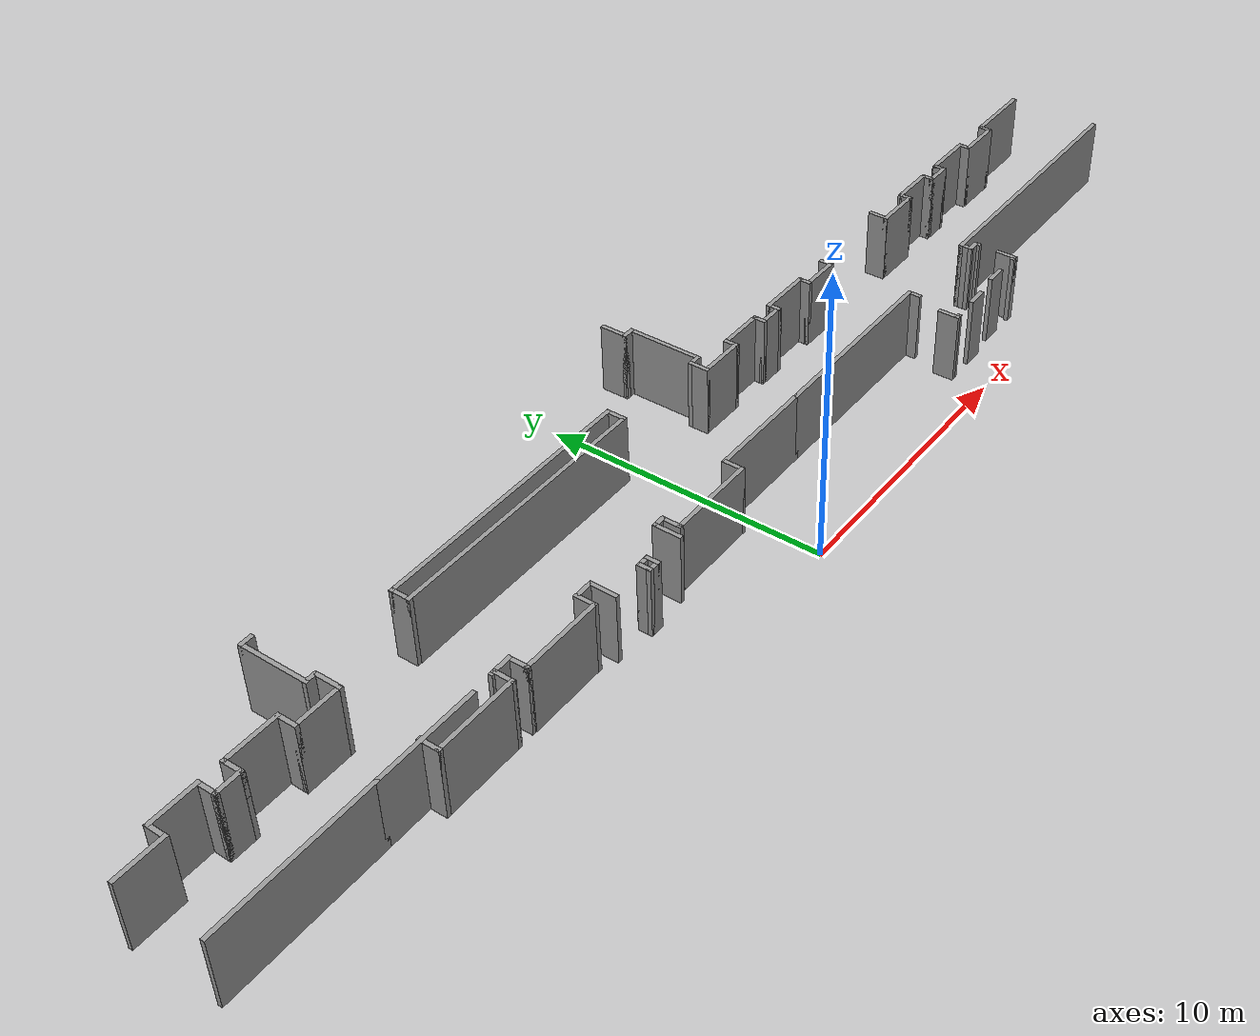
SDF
<sdf version="1.7">
 <model name="TD_n1">
  <pose>-7.14234 -2.45461 0 0 -0 0</pose>
  <link name="Wall_205">
   <collision name="Wall_205_Collision">
    <geometry><box><size>5.75 0.15 2.5</size></box></geometry>
    <pose>0 0 1.25 0 -0 0</pose>
   </collision>
   <visual name="Wall_205_Visual">
    <pose>0 0 1.25 0 -0 0</pose>
    <geometry><box><size>5.75 0.15 2.5</size></box></geometry>
    <material>
     <script><uri>file://media/materials/scripts/gazebo.material</uri><name>Gazebo/Grey</name></script>
     <ambient>1 1 1 1</ambient>
    </material>
    <meta><layer>0</layer></meta>
   </visual>
   <pose>-11.0967 5.55204 0 0 -0 0</pose>
  </link>
  <link name="Wall_208">
   <collision name="Wall_208_Collision">
    <geometry><box><size>1.75 0.15 2.5</size></box></geometry>
    <pose>0 0 1.25 0 -0 0</pose>
   </collision>
   <visual name="Wall_208_Visual">
    <pose>0 0 1.25 0 -0 0</pose>
    <geometry><box><size>1.75 0.15 2.5</size></box></geometry>
    <material>
     <script><uri>file://media/materials/scripts/gazebo.material</uri><name>Gazebo/Grey</name></script>
     <ambient>1 1 1 1</ambient>
    </material>
    <meta><layer>0</layer></meta>
   </visual>
   <pose>-13.2008 8.48798 0 0 -0 0</pose>
  </link>
  <link name="Wall_209">
   <collision name="Wall_209_Collision">
    <geometry><box><size>0.75 0.15 2.5</size></box></geometry>
    <pose>0 0 1.25 0 -0 0</pose>
   </collision>
   <visual name="Wall_209_Visual">
    <pose>0 0 1.25 0 -0 0</pose>
    <geometry><box><size>0.75 0.15 2.5</size></box></geometry>
    <material>
     <script><uri>file://media/materials/scripts/gazebo.material</uri><name>Gazebo/Grey</name></script>
     <ambient>1 1 1 1</ambient>
    </material>
    <meta><layer>0</layer></meta>
   </visual>
   <pose>-12.4008 8.78798 0 0 -0 1.5708</pose>
  </link>
  <link name="Wall_210">
   <collision name="Wall_210_Collision">
    <geometry><box><size>1.75 0.15 2.5</size></box></geometry>
    <pose>0 0 1.25 0 -0 0</pose>
   </collision>
   <visual name="Wall_210_Visual">
    <pose>0 0 1.25 0 -0 0</pose>
    <geometry><box><size>1.75 0.15 2.5</size></box></geometry>
    <material>
     <script><uri>file://media/materials/scripts/gazebo.material</uri><name>Gazebo/Grey</name></script>
     <ambient>1 1 1 1</ambient>
    </material>
    <meta><layer>0</layer></meta>
   </visual>
   <pose>-11.6008 9.08798 0 0 -0 0</pose>
  </link>
  <link name="Wall_211">
   <collision name="Wall_211_Collision">
    <geometry><box><size>0.75 0.15 2.5</size></box></geometry>
    <pose>0 0 1.25 0 -0 0</pose>
   </collision>
   <visual name="Wall_211_Visual">
    <pose>0 0 1.25 0 -0 0</pose>
    <geometry><box><size>0.75 0.15 2.5</size></box></geometry>
    <material>
     <script><uri>file://media/materials/scripts/gazebo.material</uri><name>Gazebo/Grey</name></script>
     <ambient>1 1 1 1</ambient>
    </material>
    <meta><layer>0</layer></meta>
   </visual>
   <pose>-10.8008 8.78798 0 0 -0 -1.5708</pose>
  </link>
  <link name="Wall_212">
   <collision name="Wall_212_Collision">
    <geometry><box><size>1 0.15 2.5</size></box></geometry>
    <pose>0 0 1.25 0 -0 0</pose>
   </collision>
   <visual name="Wall_212_Visual">
    <pose>0 0 1.25 0 -0 0</pose>
    <geometry><box><size>1 0.15 2.5</size></box></geometry>
    <material>
     <script><uri>file://media/materials/scripts/gazebo.material</uri><name>Gazebo/Grey</name></script>
     <ambient>1 1 1 1</ambient>
    </material>
    <meta><layer>0</layer></meta>
   </visual>
   <pose>-10.3758 8.48798 0 0 -0 0</pose>
  </link>
  <link name="Wall_213">
   <collision name="Wall_213_Collision">
    <geometry><box><size>0.75 0.15 2.5</size></box></geometry>
    <pose>0 0 1.25 0 -0 0</pose>
   </collision>
   <visual name="Wall_213_Visual">
    <pose>0 0 1.25 0 -0 0</pose>
    <geometry><box><size>0.75 0.15 2.5</size></box></geometry>
    <material>
     <script><uri>file://media/materials/scripts/gazebo.material</uri><name>Gazebo/Grey</name></script>
     <ambient>1 1 1 1</ambient>
    </material>
    <meta><layer>0</layer></meta>
   </visual>
   <pose>-9.95077 8.78798 0 0 -0 1.5708</pose>
  </link>
  <link name="Wall_214">
   <collision name="Wall_214_Collision">
    <geometry><box><size>2 0.15 2.5</size></box></geometry>
    <pose>0 0 1.25 0 -0 0</pose>
   </collision>
   <visual name="Wall_214_Visual">
    <pose>0 0 1.25 0 -0 0</pose>
    <geometry><box><size>2 0.15 2.5</size></box></geometry>
    <material>
     <script><uri>file://media/materials/scripts/gazebo.material</uri><name>Gazebo/Grey</name></script>
     <ambient>1 1 1 1</ambient>
    </material>
    <meta><layer>0</layer></meta>
   </visual>
   <pose>-9.02577 9.08798 0 0 -0 0</pose>
  </link>
  <link name="Wall_215">
   <collision name="Wall_215_Collision">
    <geometry><box><size>0.75 0.15 2.5</size></box></geometry>
    <pose>0 0 1.25 0 -0 0</pose>
   </collision>
   <visual name="Wall_215_Visual">
    <pose>0 0 1.25 0 -0 0</pose>
    <geometry><box><size>0.75 0.15 2.5</size></box></geometry>
    <material>
     <script><uri>file://media/materials/scripts/gazebo.material</uri><name>Gazebo/Grey</name></script>
     <ambient>1 1 1 1</ambient>
    </material>
    <meta><layer>0</layer></meta>
   </visual>
   <pose>-8.10077 8.78798 0 0 -0 -1.5708</pose>
  </link>
  <link name="Wall_216">
   <collision name="Wall_216_Collision">
    <geometry><box><size>1.75 0.15 2.5</size></box></geometry>
    <pose>0 0 1.25 0 -0 0</pose>
   </collision>
   <visual name="Wall_216_Visual">
    <pose>0 0 1.25 0 -0 0</pose>
    <geometry><box><size>1.75 0.15 2.5</size></box></geometry>
    <material>
     <script><uri>file://media/materials/scripts/gazebo.material</uri><name>Gazebo/Grey</name></script>
     <ambient>1 1 1 1</ambient>
    </material>
    <meta><layer>0</layer></meta>
   </visual>
   <pose>-7.30077 8.48798 0 0 -0 0</pose>
  </link>
  <link name="Wall_218">
   <collision name="Wall_218_Collision">
    <geometry><box><size>3.75 0.15 2.5</size></box></geometry>
    <pose>0 0 1.25 0 -0 0</pose>
   </collision>
   <visual name="Wall_218_Visual">
    <pose>0 0 1.25 0 -0 0</pose>
    <geometry><box><size>3.75 0.15 2.5</size></box></geometry>
    <material>
     <script><uri>file://media/materials/scripts/gazebo.material</uri><name>Gazebo/Grey</name></script>
     <ambient>1 1 1 1</ambient>
    </material>
    <meta><layer>0</layer></meta>
   </visual>
   <pose>-6.49668 5.55204 0 0 -0 0</pose>
  </link>
  <link name="Wall_220">
   <collision name="Wall_220_Collision">
    <geometry><box><size>0.75 0.15 2.5</size></box></geometry>
    <pose>0 0 1.25 0 -0 0</pose>
   </collision>
   <visual name="Wall_220_Visual">
    <pose>0 0 1.25 0 -0 0</pose>
    <geometry><box><size>0.75 0.15 2.5</size></box></geometry>
    <material>
     <script><uri>file://media/materials/scripts/gazebo.material</uri><name>Gazebo/Grey</name></script>
     <ambient>1 1 1 1</ambient>
    </material>
    <meta><layer>0</layer></meta>
   </visual>
   <pose>-6.6568 5.29526 0 0 -0 -1.5708</pose>
  </link>
  <link name="Wall_221">
   <collision name="Wall_221_Collision">
    <geometry><box><size>3 0.15 2.5</size></box></geometry>
    <pose>0 0 1.25 0 -0 0</pose>
   </collision>
   <visual name="Wall_221_Visual">
    <pose>0 0 1.25 0 -0 0</pose>
    <geometry><box><size>3 0.15 2.5</size></box></geometry>
    <material>
     <script><uri>file://media/materials/scripts/gazebo.material</uri><name>Gazebo/Grey</name></script>
     <ambient>1 1 1 1</ambient>
    </material>
    <meta><layer>0</layer></meta>
   </visual>
   <pose>-5.2318 4.99526 0 0 -0 0</pose>
  </link>
  <link name="Wall_222">
   <collision name="Wall_222_Collision">
    <geometry><box><size>0.75 0.15 2.5</size></box></geometry>
    <pose>0 0 1.25 0 -0 0</pose>
   </collision>
   <visual name="Wall_222_Visual">
    <pose>0 0 1.25 0 -0 0</pose>
    <geometry><box><size>0.75 0.15 2.5</size></box></geometry>
    <material>
     <script><uri>file://media/materials/scripts/gazebo.material</uri><name>Gazebo/Grey</name></script>
     <ambient>1 1 1 1</ambient>
    </material>
    <meta><layer>0</layer></meta>
   </visual>
   <pose>-3.8068 5.29526 0 0 -0 1.5708</pose>
  </link>
  <link name="Wall_223">
   <collision name="Wall_223_Collision">
    <geometry><box><size>0.25 0.15 2.5</size></box></geometry>
    <pose>0 0 1.25 0 -0 0</pose>
   </collision>
   <visual name="Wall_223_Visual">
    <pose>0 0 1.25 0 -0 0</pose>
    <geometry><box><size>0.25 0.15 2.5</size></box></geometry>
    <material>
     <script><uri>file://media/materials/scripts/gazebo.material</uri><name>Gazebo/Grey</name></script>
     <ambient>1 1 1 1</ambient>
    </material>
    <meta><layer>0</layer></meta>
   </visual>
   <pose>-3.8568 5.59525 0 0 -0 3.14159</pose>
  </link>
  <link name="Wall_225">
   <collision name="Wall_225_Collision">
    <geometry><box><size>1 0.15 2.5</size></box></geometry>
    <pose>0 0 1.25 0 -0 0</pose>
   </collision>
   <visual name="Wall_225_Visual">
    <pose>0 0 1.25 0 -0 0</pose>
    <geometry><box><size>1 0.15 2.5</size></box></geometry>
    <material>
     <script><uri>file://media/materials/scripts/gazebo.material</uri><name>Gazebo/Grey</name></script>
     <ambient>1 1 1 1</ambient>
    </material>
    <meta><layer>0</layer></meta>
   </visual>
   <pose>-6.50077 8.91298 0 0 -0 1.5708</pose>
  </link>
  <link name="Wall_226">
   <collision name="Wall_226_Collision">
    <geometry><box><size>0.5 0.15 2.5</size></box></geometry>
    <pose>0 0 1.25 0 -0 0</pose>
   </collision>
   <visual name="Wall_226_Visual">
    <pose>0 0 1.25 0 -0 0</pose>
    <geometry><box><size>0.5 0.15 2.5</size></box></geometry>
    <material>
     <script><uri>file://media/materials/scripts/gazebo.material</uri><name>Gazebo/Grey</name></script>
     <ambient>1 1 1 1</ambient>
    </material>
    <meta><layer>0</layer></meta>
   </visual>
   <pose>-6.67577 9.33798 0 0 -0 3.14159</pose>
  </link>
  <link name="Wall_227">
   <collision name="Wall_227_Collision">
    <geometry><box><size>2.5 0.15 2.5</size></box></geometry>
    <pose>0 0 1.25 0 -0 0</pose>
   </collision>
   <visual name="Wall_227_Visual">
    <pose>0 0 1.25 0 -0 0</pose>
    <geometry><box><size>2.5 0.15 2.5</size></box></geometry>
    <material>
     <script><uri>file://media/materials/scripts/gazebo.material</uri><name>Gazebo/Grey</name></script>
     <ambient>1 1 1 1</ambient>
    </material>
    <meta><layer>0</layer></meta>
   </visual>
   <pose>-6.85077 10.513 0 0 -0 1.5708</pose>
  </link>
  <link name="Wall_228">
   <collision name="Wall_228_Collision">
    <geometry><box><size>0.5 0.15 2.5</size></box></geometry>
    <pose>0 0 1.25 0 -0 0</pose>
   </collision>
   <visual name="Wall_228_Visual">
    <pose>0 0 1.25 0 -0 0</pose>
    <geometry><box><size>0.5 0.15 2.5</size></box></geometry>
    <material>
     <script><uri>file://media/materials/scripts/gazebo.material</uri><name>Gazebo/Grey</name></script>
     <ambient>1 1 1 1</ambient>
    </material>
    <meta><layer>0</layer></meta>
   </visual>
   <pose>-6.67577 11.688 0 0 -0 0</pose>
  </link>
  <link name="Wall_230">
   <collision name="Wall_230_Collision">
    <geometry><box><size>0.75 0.15 2.5</size></box></geometry>
    <pose>0 0 1.25 0 -0 0</pose>
   </collision>
   <visual name="Wall_230_Visual">
    <pose>0 0 1.25 0 -0 0</pose>
    <geometry><box><size>0.75 0.15 2.5</size></box></geometry>
    <material>
     <script><uri>file://media/materials/scripts/gazebo.material</uri><name>Gazebo/Grey</name></script>
     <ambient>1 1 1 1</ambient>
    </material>
    <meta><layer>0</layer></meta>
   </visual>
   <pose>-3.5068 5.59525 0 0 -0 0</pose>
  </link>
  <link name="Wall_231">
   <collision name="Wall_231_Collision">
    <geometry><box><size>0.75 0.15 2.5</size></box></geometry>
    <pose>0 0 1.25 0 -0 0</pose>
   </collision>
   <visual name="Wall_231_Visual">
    <pose>0 0 1.25 0 -0 0</pose>
    <geometry><box><size>0.75 0.15 2.5</size></box></geometry>
    <material>
     <script><uri>file://media/materials/scripts/gazebo.material</uri><name>Gazebo/Grey</name></script>
     <ambient>1 1 1 1</ambient>
    </material>
    <meta><layer>0</layer></meta>
   </visual>
   <pose>-3.2068 5.29526 0 0 -0 -1.5708</pose>
  </link>
  <link name="Wall_232">
   <collision name="Wall_232_Collision">
    <geometry><box><size>3 0.15 2.5</size></box></geometry>
    <pose>0 0 1.25 0 -0 0</pose>
   </collision>
   <visual name="Wall_232_Visual">
    <pose>0 0 1.25 0 -0 0</pose>
    <geometry><box><size>3 0.15 2.5</size></box></geometry>
    <material>
     <script><uri>file://media/materials/scripts/gazebo.material</uri><name>Gazebo/Grey</name></script>
     <ambient>1 1 1 1</ambient>
    </material>
    <meta><layer>0</layer></meta>
   </visual>
   <pose>-1.7818 4.99526 0 0 -0 0</pose>
  </link>
  <link name="Wall_233">
   <collision name="Wall_233_Collision">
    <geometry><box><size>0.75 0.15 2.5</size></box></geometry>
    <pose>0 0 1.25 0 -0 0</pose>
   </collision>
   <visual name="Wall_233_Visual">
    <pose>0 0 1.25 0 -0 0</pose>
    <geometry><box><size>0.75 0.15 2.5</size></box></geometry>
    <material>
     <script><uri>file://media/materials/scripts/gazebo.material</uri><name>Gazebo/Grey</name></script>
     <ambient>1 1 1 1</ambient>
    </material>
    <meta><layer>0</layer></meta>
   </visual>
   <pose>-0.356799 5.29526 0 0 -0 1.5708</pose>
  </link>
  <link name="Wall_234">
   <collision name="Wall_234_Collision">
    <geometry><box><size>0.75 0.15 2.5</size></box></geometry>
    <pose>0 0 1.25 0 -0 0</pose>
   </collision>
   <visual name="Wall_234_Visual">
    <pose>0 0 1.25 0 -0 0</pose>
    <geometry><box><size>0.75 0.15 2.5</size></box></geometry>
    <material>
     <script><uri>file://media/materials/scripts/gazebo.material</uri><name>Gazebo/Grey</name></script>
     <ambient>1 1 1 1</ambient>
    </material>
    <meta><layer>0</layer></meta>
   </visual>
   <pose>-0.056799 5.59525 0 0 -0 0</pose>
  </link>
  <link name="Wall_235">
   <collision name="Wall_235_Collision">
    <geometry><box><size>1 0.15 2.5</size></box></geometry>
    <pose>0 0 1.25 0 -0 0</pose>
   </collision>
   <visual name="Wall_235_Visual">
    <pose>0 0 1.25 0 -0 0</pose>
    <geometry><box><size>1 0.15 2.5</size></box></geometry>
    <material>
     <script><uri>file://media/materials/scripts/gazebo.material</uri><name>Gazebo/Grey</name></script>
     <ambient>1 1 1 1</ambient>
    </material>
    <meta><layer>0</layer></meta>
   </visual>
   <pose>0.243201 5.17026 0 0 -0 -1.5708</pose>
  </link>
  <link name="Wall_237">
   <collision name="Wall_237_Collision">
    <geometry><box><size>0.5 0.15 2.5</size></box></geometry>
    <pose>0 0 1.25 0 -0 0</pose>
   </collision>
   <visual name="Wall_237_Visual">
    <pose>0 0 1.25 0 -0 0</pose>
    <geometry><box><size>0.5 0.15 2.5</size></box></geometry>
    <material>
     <script><uri>file://media/materials/scripts/gazebo.material</uri><name>Gazebo/Grey</name></script>
     <ambient>1 1 1 1</ambient>
    </material>
    <meta><layer>0</layer></meta>
   </visual>
   <pose>1.78509 4.94663 0 0 -0 0</pose>
  </link>
  <link name="Wall_238">
   <collision name="Wall_238_Collision">
    <geometry><box><size>0.5 0.15 2.5</size></box></geometry>
    <pose>0 0 1.25 0 -0 0</pose>
   </collision>
   <visual name="Wall_238_Visual">
    <pose>0 0 1.25 0 -0 0</pose>
    <geometry><box><size>0.5 0.15 2.5</size></box></geometry>
    <material>
     <script><uri>file://media/materials/scripts/gazebo.material</uri><name>Gazebo/Grey</name></script>
     <ambient>1 1 1 1</ambient>
    </material>
    <meta><layer>0</layer></meta>
   </visual>
   <pose>1.96009 4.77163 0 0 -0 -1.5708</pose>
  </link>
  <link name="Wall_239">
   <collision name="Wall_239_Collision">
    <geometry><box><size>0.5 0.15 2.5</size></box></geometry>
    <pose>0 0 1.25 0 -0 0</pose>
   </collision>
   <visual name="Wall_239_Visual">
    <pose>0 0 1.25 0 -0 0</pose>
    <geometry><box><size>0.5 0.15 2.5</size></box></geometry>
    <material>
     <script><uri>file://media/materials/scripts/gazebo.material</uri><name>Gazebo/Grey</name></script>
     <ambient>1 1 1 1</ambient>
    </material>
    <meta><layer>0</layer></meta>
   </visual>
   <pose>1.78509 4.59663 0 0 -0 3.14159</pose>
  </link>
  <link name="Wall_240">
   <collision name="Wall_240_Collision">
    <geometry><box><size>0.5 0.15 2.5</size></box></geometry>
    <pose>0 0 1.25 0 -0 0</pose>
   </collision>
   <visual name="Wall_240_Visual">
    <pose>0 0 1.25 0 -0 0</pose>
    <geometry><box><size>0.5 0.15 2.5</size></box></geometry>
    <material>
     <script><uri>file://media/materials/scripts/gazebo.material</uri><name>Gazebo/Grey</name></script>
     <ambient>1 1 1 1</ambient>
    </material>
    <meta><layer>0</layer></meta>
   </visual>
   <pose>1.61009 4.77163 0 0 -0 1.5708</pose>
  </link>
  <link name="Wall_242">
   <collision name="Wall_242_Collision">
    <geometry><box><size>1 0.15 2.5</size></box></geometry>
    <pose>0 0 1.25 0 -0 0</pose>
   </collision>
   <visual name="Wall_242_Visual">
    <pose>0 0 1.25 0 -0 0</pose>
    <geometry><box><size>1 0.15 2.5</size></box></geometry>
    <material>
     <script><uri>file://media/materials/scripts/gazebo.material</uri><name>Gazebo/Grey</name></script>
     <ambient>1 1 1 1</ambient>
    </material>
    <meta><layer>0</layer></meta>
   </visual>
   <pose>3.18549 5.1422 0 0 -0 1.5708</pose>
  </link>
  <link name="Wall_243">
   <collision name="Wall_243_Collision">
    <geometry><box><size>0.5 0.15 2.5</size></box></geometry>
    <pose>0 0 1.25 0 -0 0</pose>
   </collision>
   <visual name="Wall_243_Visual">
    <pose>0 0 1.25 0 -0 0</pose>
    <geometry><box><size>0.5 0.15 2.5</size></box></geometry>
    <material>
     <script><uri>file://media/materials/scripts/gazebo.material</uri><name>Gazebo/Grey</name></script>
     <ambient>1 1 1 1</ambient>
    </material>
    <meta><layer>0</layer></meta>
   </visual>
   <pose>3.36049 5.5672 0 0 -0 0</pose>
  </link>
  <link name="Wall_244">
   <collision name="Wall_244_Collision">
    <geometry><box><size>0.75 0.15 2.5</size></box></geometry>
    <pose>0 0 1.25 0 -0 0</pose>
   </collision>
   <visual name="Wall_244_Visual">
    <pose>0 0 1.25 0 -0 0</pose>
    <geometry><box><size>0.75 0.15 2.5</size></box></geometry>
    <material>
     <script><uri>file://media/materials/scripts/gazebo.material</uri><name>Gazebo/Grey</name></script>
     <ambient>1 1 1 1</ambient>
    </material>
    <meta><layer>0</layer></meta>
   </visual>
   <pose>3.53549 5.2672 0 0 -0 -1.5708</pose>
  </link>
  <link name="Wall_245">
   <collision name="Wall_245_Collision">
    <geometry><box><size>3.25 0.15 2.5</size></box></geometry>
    <pose>0 0 1.25 0 -0 0</pose>
   </collision>
   <visual name="Wall_245_Visual">
    <pose>0 0 1.25 0 -0 0</pose>
    <geometry><box><size>3.25 0.15 2.5</size></box></geometry>
    <material>
     <script><uri>file://media/materials/scripts/gazebo.material</uri><name>Gazebo/Grey</name></script>
     <ambient>1 1 1 1</ambient>
    </material>
    <meta><layer>0</layer></meta>
   </visual>
   <pose>5.08549 4.9672 0 0 -0 0</pose>
  </link>
  <link name="Wall_246">
   <collision name="Wall_246_Collision">
    <geometry><box><size>0.75 0.15 2.5</size></box></geometry>
    <pose>0 0 1.25 0 -0 0</pose>
   </collision>
   <visual name="Wall_246_Visual">
    <pose>0 0 1.25 0 -0 0</pose>
    <geometry><box><size>0.75 0.15 2.5</size></box></geometry>
    <material>
     <script><uri>file://media/materials/scripts/gazebo.material</uri><name>Gazebo/Grey</name></script>
     <ambient>1 1 1 1</ambient>
    </material>
    <meta><layer>0</layer></meta>
   </visual>
   <pose>6.63549 5.2672 0 0 -0 1.5708</pose>
  </link>
  <link name="Wall_247">
   <collision name="Wall_247_Collision">
    <geometry><box><size>4 0.15 2.5</size></box></geometry>
    <pose>0 0 1.25 0 -0 0</pose>
   </collision>
   <visual name="Wall_247_Visual">
    <pose>0 0 1.25 0 -0 0</pose>
    <geometry><box><size>4 0.15 2.5</size></box></geometry>
    <material>
     <script><uri>file://media/materials/scripts/gazebo.material</uri><name>Gazebo/Grey</name></script>
     <ambient>1 1 1 1</ambient>
    </material>
    <meta><layer>0</layer></meta>
   </visual>
   <pose>8.56049 5.5672 0 0 -0 0</pose>
  </link>
  <link name="Wall_249">
   <collision name="Wall_249_Collision">
    <geometry><box><size>0.75 0.15 2.5</size></box></geometry>
    <pose>0 0 1.25 0 -0 0</pose>
   </collision>
   <visual name="Wall_249_Visual">
    <pose>0 0 1.25 0 -0 0</pose>
    <geometry><box><size>0.75 0.15 2.5</size></box></geometry>
    <material>
     <script><uri>file://media/materials/scripts/gazebo.material</uri><name>Gazebo/Grey</name></script>
     <ambient>1 1 1 1</ambient>
    </material>
    <meta><layer>0</layer></meta>
   </visual>
   <pose>-3.03962 9.54456 0 0 -0 1.5708</pose>
  </link>
  <link name="Wall_250">
   <collision name="Wall_250_Collision">
    <geometry><box><size>9.75 0.15 2.5</size></box></geometry>
    <pose>0 0 1.25 0 -0 0</pose>
   </collision>
   <visual name="Wall_250_Visual">
    <pose>0 0 1.25 0 -0 0</pose>
    <geometry><box><size>9.75 0.15 2.5</size></box></geometry>
    <material>
     <script><uri>file://media/materials/scripts/gazebo.material</uri><name>Gazebo/Grey</name></script>
     <ambient>1 1 1 1</ambient>
    </material>
    <meta><layer>0</layer></meta>
   </visual>
   <pose>1.76038 9.84456 0 0 -0 0</pose>
  </link>
  <link name="Wall_251">
   <collision name="Wall_251_Collision">
    <geometry><box><size>0.75 0.15 2.5</size></box></geometry>
    <pose>0 0 1.25 0 -0 0</pose>
   </collision>
   <visual name="Wall_251_Visual">
    <pose>0 0 1.25 0 -0 0</pose>
    <geometry><box><size>0.75 0.15 2.5</size></box></geometry>
    <material>
     <script><uri>file://media/materials/scripts/gazebo.material</uri><name>Gazebo/Grey</name></script>
     <ambient>1 1 1 1</ambient>
    </material>
    <meta><layer>0</layer></meta>
   </visual>
   <pose>6.56038 9.54456 0 0 -0 -1.5708</pose>
  </link>
  <link name="Wall_252">
   <collision name="Wall_252_Collision">
    <geometry><box><size>9.75 0.15 2.5</size></box></geometry>
    <pose>0 0 1.25 0 -0 0</pose>
   </collision>
   <visual name="Wall_252_Visual">
    <pose>0 0 1.25 0 -0 0</pose>
    <geometry><box><size>9.75 0.15 2.5</size></box></geometry>
    <material>
     <script><uri>file://media/materials/scripts/gazebo.material</uri><name>Gazebo/Grey</name></script>
     <ambient>1 1 1 1</ambient>
    </material>
    <meta><layer>0</layer></meta>
   </visual>
   <pose>1.76038 9.24456 0 0 -0 3.14159</pose>
  </link>
  <link name="Wall_254">
   <collision name="Wall_254_Collision">
    <geometry><box><size>1 0.15 2.5</size></box></geometry>
    <pose>0 0 1.25 0 -0 0</pose>
   </collision>
   <visual name="Wall_254_Visual">
    <pose>0 0 1.25 0 -0 0</pose>
    <geometry><box><size>1 0.15 2.5</size></box></geometry>
    <material>
     <script><uri>file://media/materials/scripts/gazebo.material</uri><name>Gazebo/Grey</name></script>
     <ambient>1 1 1 1</ambient>
    </material>
    <meta><layer>0</layer></meta>
   </visual>
   <pose>10.0224 12.2304 0 0 -0 -1.5708</pose>
  </link>
  <link name="Wall_255">
   <collision name="Wall_255_Collision">
    <geometry><box><size>0.5 0.15 2.5</size></box></geometry>
    <pose>0 0 1.25 0 -0 0</pose>
   </collision>
   <visual name="Wall_255_Visual">
    <pose>0 0 1.25 0 -0 0</pose>
    <geometry><box><size>0.5 0.15 2.5</size></box></geometry>
    <material>
     <script><uri>file://media/materials/scripts/gazebo.material</uri><name>Gazebo/Grey</name></script>
     <ambient>1 1 1 1</ambient>
    </material>
    <meta><layer>0</layer></meta>
   </visual>
   <pose>10.1974 11.8054 0 0 -0 0</pose>
  </link>
  <link name="Wall_256">
   <collision name="Wall_256_Collision">
    <geometry><box><size>2.75 0.15 2.5</size></box></geometry>
    <pose>0 0 1.25 0 -0 0</pose>
   </collision>
   <visual name="Wall_256_Visual">
    <pose>0 0 1.25 0 -0 0</pose>
    <geometry><box><size>2.75 0.15 2.5</size></box></geometry>
    <material>
     <script><uri>file://media/materials/scripts/gazebo.material</uri><name>Gazebo/Grey</name></script>
     <ambient>1 1 1 1</ambient>
    </material>
    <meta><layer>0</layer></meta>
   </visual>
   <pose>10.3724 10.5054 0 0 -0 -1.5708</pose>
  </link>
  <link name="Wall_257">
   <collision name="Wall_257_Collision">
    <geometry><box><size>0.5 0.15 2.5</size></box></geometry>
    <pose>0 0 1.25 0 -0 0</pose>
   </collision>
   <visual name="Wall_257_Visual">
    <pose>0 0 1.25 0 -0 0</pose>
    <geometry><box><size>0.5 0.15 2.5</size></box></geometry>
    <material>
     <script><uri>file://media/materials/scripts/gazebo.material</uri><name>Gazebo/Grey</name></script>
     <ambient>1 1 1 1</ambient>
    </material>
    <meta><layer>0</layer></meta>
   </visual>
   <pose>10.1974 9.20537 0 0 -0 3.14159</pose>
  </link>
  <link name="Wall_258">
   <collision name="Wall_258_Collision">
    <geometry><box><size>0.75 0.15 2.5</size></box></geometry>
    <pose>0 0 1.25 0 -0 0</pose>
   </collision>
   <visual name="Wall_258_Visual">
    <pose>0 0 1.25 0 -0 0</pose>
    <geometry><box><size>0.75 0.15 2.5</size></box></geometry>
    <material>
     <script><uri>file://media/materials/scripts/gazebo.material</uri><name>Gazebo/Grey</name></script>
     <ambient>1 1 1 1</ambient>
    </material>
    <meta><layer>0</layer></meta>
   </visual>
   <pose>10.0224 8.90537 0 0 -0 -1.5708</pose>
  </link>
  <link name="Wall_259">
   <collision name="Wall_259_Collision">
    <geometry><box><size>1.75 0.15 2.5</size></box></geometry>
    <pose>0 0 1.25 0 -0 0</pose>
   </collision>
   <visual name="Wall_259_Visual">
    <pose>0 0 1.25 0 -0 0</pose>
    <geometry><box><size>1.75 0.15 2.5</size></box></geometry>
    <material>
     <script><uri>file://media/materials/scripts/gazebo.material</uri><name>Gazebo/Grey</name></script>
     <ambient>1 1 1 1</ambient>
    </material>
    <meta><layer>0</layer></meta>
   </visual>
   <pose>10.8224 8.60537 0 0 -0 0</pose>
  </link>
  <link name="Wall_260">
   <collision name="Wall_260_Collision">
    <geometry><box><size>0.5 0.15 2.5</size></box></geometry>
    <pose>0 0 1.25 0 -0 0</pose>
   </collision>
   <visual name="Wall_260_Visual">
    <pose>0 0 1.25 0 -0 0</pose>
    <geometry><box><size>0.5 0.15 2.5</size></box></geometry>
    <material>
     <script><uri>file://media/materials/scripts/gazebo.material</uri><name>Gazebo/Grey</name></script>
     <ambient>1 1 1 1</ambient>
    </material>
    <meta><layer>0</layer></meta>
   </visual>
   <pose>11.6224 8.78037 0 0 -0 1.5708</pose>
  </link>
  <link name="Wall_261">
   <collision name="Wall_261_Collision">
    <geometry><box><size>1.75 0.15 2.5</size></box></geometry>
    <pose>0 0 1.25 0 -0 0</pose>
   </collision>
   <visual name="Wall_261_Visual">
    <pose>0 0 1.25 0 -0 0</pose>
    <geometry><box><size>1.75 0.15 2.5</size></box></geometry>
    <material>
     <script><uri>file://media/materials/scripts/gazebo.material</uri><name>Gazebo/Grey</name></script>
     <ambient>1 1 1 1</ambient>
    </material>
    <meta><layer>0</layer></meta>
   </visual>
   <pose>12.4224 8.95537 0 0 -0 0</pose>
  </link>
  <link name="Wall_262">
   <collision name="Wall_262_Collision">
    <geometry><box><size>0.5 0.15 2.5</size></box></geometry>
    <pose>0 0 1.25 0 -0 0</pose>
   </collision>
   <visual name="Wall_262_Visual">
    <pose>0 0 1.25 0 -0 0</pose>
    <geometry><box><size>0.5 0.15 2.5</size></box></geometry>
    <material>
     <script><uri>file://media/materials/scripts/gazebo.material</uri><name>Gazebo/Grey</name></script>
     <ambient>1 1 1 1</ambient>
    </material>
    <meta><layer>0</layer></meta>
   </visual>
   <pose>13.2224 8.78037 0 0 -0 -1.5708</pose>
  </link>
  <link name="Wall_263">
   <collision name="Wall_263_Collision">
    <geometry><box><size>1 0.15 2.5</size></box></geometry>
    <pose>0 0 1.25 0 -0 0</pose>
   </collision>
   <visual name="Wall_263_Visual">
    <pose>0 0 1.25 0 -0 0</pose>
    <geometry><box><size>1 0.15 2.5</size></box></geometry>
    <material>
     <script><uri>file://media/materials/scripts/gazebo.material</uri><name>Gazebo/Grey</name></script>
     <ambient>1 1 1 1</ambient>
    </material>
    <meta><layer>0</layer></meta>
   </visual>
   <pose>13.6474 8.60537 0 0 -0 0</pose>
  </link>
  <link name="Wall_264">
   <collision name="Wall_264_Collision">
    <geometry><box><size>0.5 0.15 2.5</size></box></geometry>
    <pose>0 0 1.25 0 -0 0</pose>
   </collision>
   <visual name="Wall_264_Visual">
    <pose>0 0 1.25 0 -0 0</pose>
    <geometry><box><size>0.5 0.15 2.5</size></box></geometry>
    <material>
     <script><uri>file://media/materials/scripts/gazebo.material</uri><name>Gazebo/Grey</name></script>
     <ambient>1 1 1 1</ambient>
    </material>
    <meta><layer>0</layer></meta>
   </visual>
   <pose>14.0724 8.78037 0 0 -0 1.5708</pose>
  </link>
  <link name="Wall_265">
   <collision name="Wall_265_Collision">
    <geometry><box><size>2 0.15 2.5</size></box></geometry>
    <pose>0 0 1.25 0 -0 0</pose>
   </collision>
   <visual name="Wall_265_Visual">
    <pose>0 0 1.25 0 -0 0</pose>
    <geometry><box><size>2 0.15 2.5</size></box></geometry>
    <material>
     <script><uri>file://media/materials/scripts/gazebo.material</uri><name>Gazebo/Grey</name></script>
     <ambient>1 1 1 1</ambient>
    </material>
    <meta><layer>0</layer></meta>
   </visual>
   <pose>14.9974 8.95537 0 0 -0 0</pose>
  </link>
  <link name="Wall_266">
   <collision name="Wall_266_Collision">
    <geometry><box><size>0.5 0.15 2.5</size></box></geometry>
    <pose>0 0 1.25 0 -0 0</pose>
   </collision>
   <visual name="Wall_266_Visual">
    <pose>0 0 1.25 0 -0 0</pose>
    <geometry><box><size>0.5 0.15 2.5</size></box></geometry>
    <material>
     <script><uri>file://media/materials/scripts/gazebo.material</uri><name>Gazebo/Grey</name></script>
     <ambient>1 1 1 1</ambient>
    </material>
    <meta><layer>0</layer></meta>
   </visual>
   <pose>15.9224 8.78037 0 0 -0 -1.5708</pose>
  </link>
  <link name="Wall_267">
   <collision name="Wall_267_Collision">
    <geometry><box><size>1.5 0.15 2.5</size></box></geometry>
    <pose>0 0 1.25 0 -0 0</pose>
   </collision>
   <visual name="Wall_267_Visual">
    <pose>0 0 1.25 0 -0 0</pose>
    <geometry><box><size>1.5 0.15 2.5</size></box></geometry>
    <material>
     <script><uri>file://media/materials/scripts/gazebo.material</uri><name>Gazebo/Grey</name></script>
     <ambient>1 1 1 1</ambient>
    </material>
    <meta><layer>0</layer></meta>
   </visual>
   <pose>16.5974 8.60537 0 0 -0 0</pose>
  </link>
  <link name="Wall_268">
   <collision name="Wall_268_Collision">
    <geometry><box><size>0.5 0.15 2.5</size></box></geometry>
    <pose>0 0 1.25 0 -0 0</pose>
   </collision>
   <visual name="Wall_268_Visual">
    <pose>0 0 1.25 0 -0 0</pose>
    <geometry><box><size>0.5 0.15 2.5</size></box></geometry>
    <material>
     <script><uri>file://media/materials/scripts/gazebo.material</uri><name>Gazebo/Grey</name></script>
     <ambient>1 1 1 1</ambient>
    </material>
    <meta><layer>0</layer></meta>
   </visual>
   <pose>17.2724 8.78037 0 0 -0 1.5708</pose>
  </link>
  <link name="Wall_270">
   <collision name="Wall_270_Collision">
    <geometry><box><size>7 0.15 2.5</size></box></geometry>
    <pose>0 0 1.25 0 -0 0</pose>
   </collision>
   <visual name="Wall_270_Visual">
    <pose>0 0 1.25 0 -0 0</pose>
    <geometry><box><size>7 0.15 2.5</size></box></geometry>
    <material>
     <script><uri>file://media/materials/scripts/gazebo.material</uri><name>Gazebo/Grey</name></script>
     <ambient>1 1 1 1</ambient>
    </material>
    <meta><layer>0</layer></meta>
   </visual>
   <pose>13.9105 5.5672 0 0 -0 0</pose>
  </link>
  <link name="Wall_271">
   <collision name="Wall_271_Collision">
    <geometry><box><size>0.5 0.15 2.5</size></box></geometry>
    <pose>0 0 1.25 0 -0 0</pose>
   </collision>
   <visual name="Wall_271_Visual">
    <pose>0 0 1.25 0 -0 0</pose>
    <geometry><box><size>0.5 0.15 2.5</size></box></geometry>
    <material>
     <script><uri>file://media/materials/scripts/gazebo.material</uri><name>Gazebo/Grey</name></script>
     <ambient>1 1 1 1</ambient>
    </material>
    <meta><layer>0</layer></meta>
   </visual>
   <pose>17.3355 5.3922 0 0 -0 -1.5708</pose>
  </link>
  <link name="Wall_273">
   <collision name="Wall_273_Collision">
    <geometry><box><size>0.75 0.15 2.5</size></box></geometry>
    <pose>0 0 1.25 0 -0 0</pose>
   </collision>
   <visual name="Wall_273_Visual">
    <pose>0 0 1.25 0 -0 0</pose>
    <geometry><box><size>0.75 0.15 2.5</size></box></geometry>
    <material>
     <script><uri>file://media/materials/scripts/gazebo.material</uri><name>Gazebo/Grey</name></script>
     <ambient>1 1 1 1</ambient>
    </material>
    <meta><layer>0</layer></meta>
   </visual>
   <pose>16.997 3.88187 0 0 -0 -1.5708</pose>
  </link>
  <link name="Wall_274">
   <collision name="Wall_274_Collision">
    <geometry><box><size>0.25 0.15 2.5</size></box></geometry>
    <pose>0 0 1.25 0 -0 0</pose>
   </collision>
   <visual name="Wall_274_Visual">
    <pose>0 0 1.25 0 -0 0</pose>
    <geometry><box><size>0.25 0.15 2.5</size></box></geometry>
    <material>
     <script><uri>file://media/materials/scripts/gazebo.material</uri><name>Gazebo/Grey</name></script>
     <ambient>1 1 1 1</ambient>
    </material>
    <meta><layer>0</layer></meta>
   </visual>
   <pose>17.047 3.58188 0 0 -0 0</pose>
  </link>
  <link name="Wall_276">
   <collision name="Wall_276_Collision">
    <geometry><box><size>0.75 0.15 2.5</size></box></geometry>
    <pose>0 0 1.25 0 -0 0</pose>
   </collision>
   <visual name="Wall_276_Visual">
    <pose>0 0 1.25 0 -0 0</pose>
    <geometry><box><size>0.75 0.15 2.5</size></box></geometry>
    <material>
     <script><uri>file://media/materials/scripts/gazebo.material</uri><name>Gazebo/Grey</name></script>
     <ambient>1 1 1 1</ambient>
    </material>
    <meta><layer>0</layer></meta>
   </visual>
   <pose>18.3676 3.61596 0 0 -0 0</pose>
  </link>
  <link name="Wall_278">
   <collision name="Wall_278_Collision">
    <geometry><box><size>0.75 0.15 2.5</size></box></geometry>
    <pose>0 0 1.25 0 -0 0</pose>
   </collision>
   <visual name="Wall_278_Visual">
    <pose>0 0 1.25 0 -0 0</pose>
    <geometry><box><size>0.75 0.15 2.5</size></box></geometry>
    <material>
     <script><uri>file://media/materials/scripts/gazebo.material</uri><name>Gazebo/Grey</name></script>
     <ambient>1 1 1 1</ambient>
    </material>
    <meta><layer>0</layer></meta>
   </visual>
   <pose>19.8971 3.73832 0 0 -0 0</pose>
  </link>
  <link name="Wall_280">
   <collision name="Wall_280_Collision">
    <geometry><box><size>0.25 0.15 2.5</size></box></geometry>
    <pose>0 0 1.25 0 -0 0</pose>
   </collision>
   <visual name="Wall_280_Visual">
    <pose>0 0 1.25 0 -0 0</pose>
    <geometry><box><size>0.25 0.15 2.5</size></box></geometry>
    <material>
     <script><uri>file://media/materials/scripts/gazebo.material</uri><name>Gazebo/Grey</name></script>
     <ambient>1 1 1 1</ambient>
    </material>
    <meta><layer>0</layer></meta>
   </visual>
   <pose>21.1308 3.70773 0 0 -0 0</pose>
  </link>
  <link name="Wall_281">
   <collision name="Wall_281_Collision">
    <geometry><box><size>0.75 0.15 2.5</size></box></geometry>
    <pose>0 0 1.25 0 -0 0</pose>
   </collision>
   <visual name="Wall_281_Visual">
    <pose>0 0 1.25 0 -0 0</pose>
    <geometry><box><size>0.75 0.15 2.5</size></box></geometry>
    <material>
     <script><uri>file://media/materials/scripts/gazebo.material</uri><name>Gazebo/Grey</name></script>
     <ambient>1 1 1 1</ambient>
    </material>
    <meta><layer>0</layer></meta>
   </visual>
   <pose>21.1808 4.00773 0 0 -0 1.5708</pose>
  </link>
  <link name="Wall_283">
   <collision name="Wall_283_Collision">
    <geometry><box><size>0.25 0.15 2.5</size></box></geometry>
    <pose>0 0 1.25 0 -0 0</pose>
   </collision>
   <visual name="Wall_283_Visual">
    <pose>0 0 1.25 0 -0 0</pose>
    <geometry><box><size>0.25 0.15 2.5</size></box></geometry>
    <material>
     <script><uri>file://media/materials/scripts/gazebo.material</uri><name>Gazebo/Grey</name></script>
     <ambient>1 1 1 1</ambient>
    </material>
    <meta><layer>0</layer></meta>
   </visual>
   <pose>21.1878 5.14958 0 0 -0 1.5708</pose>
  </link>
  <link name="Wall_284">
   <collision name="Wall_284_Collision">
    <geometry><box><size>0.5 0.15 2.5</size></box></geometry>
    <pose>0 0 1.25 0 -0 0</pose>
   </collision>
   <visual name="Wall_284_Visual">
    <pose>0 0 1.25 0 -0 0</pose>
    <geometry><box><size>0.5 0.15 2.5</size></box></geometry>
    <material>
     <script><uri>file://media/materials/scripts/gazebo.material</uri><name>Gazebo/Grey</name></script>
     <ambient>1 1 1 1</ambient>
    </material>
    <meta><layer>0</layer></meta>
   </visual>
   <pose>21.0128 5.19958 0 0 -0 3.14159</pose>
  </link>
  <link name="Wall_285">
   <collision name="Wall_285_Collision">
    <geometry><box><size>0.5 0.15 2.5</size></box></geometry>
    <pose>0 0 1.25 0 -0 0</pose>
   </collision>
   <visual name="Wall_285_Visual">
    <pose>0 0 1.25 0 -0 0</pose>
    <geometry><box><size>0.5 0.15 2.5</size></box></geometry>
    <material>
     <script><uri>file://media/materials/scripts/gazebo.material</uri><name>Gazebo/Grey</name></script>
     <ambient>1 1 1 1</ambient>
    </material>
    <meta><layer>0</layer></meta>
   </visual>
   <pose>20.8378 5.37458 0 0 -0 1.5708</pose>
  </link>
  <link name="Wall_286">
   <collision name="Wall_286_Collision">
    <geometry><box><size>10.25 0.15 2.5</size></box></geometry>
    <pose>0 0 1.25 0 -0 0</pose>
   </collision>
   <visual name="Wall_286_Visual">
    <pose>0 0 1.25 0 -0 0</pose>
    <geometry><box><size>10.25 0.15 2.5</size></box></geometry>
    <material>
     <script><uri>file://media/materials/scripts/gazebo.material</uri><name>Gazebo/Grey</name></script>
     <ambient>1 1 1 1</ambient>
    </material>
    <meta><layer>0</layer></meta>
   </visual>
   <pose>25.8878 5.54958 0 0 -0 0</pose>
  </link>
  <link name="Wall_288">
   <collision name="Wall_288_Collision">
    <geometry><box><size>0.75 0.15 2.5</size></box></geometry>
    <pose>0 0 1.25 0 -0 0</pose>
   </collision>
   <visual name="Wall_288_Visual">
    <pose>0 0 1.25 0 -0 0</pose>
    <geometry><box><size>0.75 0.15 2.5</size></box></geometry>
    <material>
     <script><uri>file://media/materials/scripts/gazebo.material</uri><name>Gazebo/Grey</name></script>
     <ambient>1 1 1 1</ambient>
    </material>
    <meta><layer>0</layer></meta>
   </visual>
   <pose>20.8513 8.86808 0 0 -0 -1.5708</pose>
  </link>
  <link name="Wall_289">
   <collision name="Wall_289_Collision">
    <geometry><box><size>1.75 0.15 2.5</size></box></geometry>
    <pose>0 0 1.25 0 -0 0</pose>
   </collision>
   <visual name="Wall_289_Visual">
    <pose>0 0 1.25 0 -0 0</pose>
    <geometry><box><size>1.75 0.15 2.5</size></box></geometry>
    <material>
     <script><uri>file://media/materials/scripts/gazebo.material</uri><name>Gazebo/Grey</name></script>
     <ambient>1 1 1 1</ambient>
    </material>
    <meta><layer>0</layer></meta>
   </visual>
   <pose>21.6513 8.56808 0 0 -0 0</pose>
  </link>
  <link name="Wall_290">
   <collision name="Wall_290_Collision">
    <geometry><box><size>0.5 0.15 2.5</size></box></geometry>
    <pose>0 0 1.25 0 -0 0</pose>
   </collision>
   <visual name="Wall_290_Visual">
    <pose>0 0 1.25 0 -0 0</pose>
    <geometry><box><size>0.5 0.15 2.5</size></box></geometry>
    <material>
     <script><uri>file://media/materials/scripts/gazebo.material</uri><name>Gazebo/Grey</name></script>
     <ambient>1 1 1 1</ambient>
    </material>
    <meta><layer>0</layer></meta>
   </visual>
   <pose>22.4513 8.74308 0 0 -0 1.5708</pose>
  </link>
  <link name="Wall_291">
   <collision name="Wall_291_Collision">
    <geometry><box><size>1.75 0.15 2.5</size></box></geometry>
    <pose>0 0 1.25 0 -0 0</pose>
   </collision>
   <visual name="Wall_291_Visual">
    <pose>0 0 1.25 0 -0 0</pose>
    <geometry><box><size>1.75 0.15 2.5</size></box></geometry>
    <material>
     <script><uri>file://media/materials/scripts/gazebo.material</uri><name>Gazebo/Grey</name></script>
     <ambient>1 1 1 1</ambient>
    </material>
    <meta><layer>0</layer></meta>
   </visual>
   <pose>23.2513 8.91808 0 0 -0 0</pose>
  </link>
  <link name="Wall_292">
   <collision name="Wall_292_Collision">
    <geometry><box><size>0.5 0.15 2.5</size></box></geometry>
    <pose>0 0 1.25 0 -0 0</pose>
   </collision>
   <visual name="Wall_292_Visual">
    <pose>0 0 1.25 0 -0 0</pose>
    <geometry><box><size>0.5 0.15 2.5</size></box></geometry>
    <material>
     <script><uri>file://media/materials/scripts/gazebo.material</uri><name>Gazebo/Grey</name></script>
     <ambient>1 1 1 1</ambient>
    </material>
    <meta><layer>0</layer></meta>
   </visual>
   <pose>24.0513 8.74308 0 0 -0 -1.5708</pose>
  </link>
  <link name="Wall_293">
   <collision name="Wall_293_Collision">
    <geometry><box><size>1 0.15 2.5</size></box></geometry>
    <pose>0 0 1.25 0 -0 0</pose>
   </collision>
   <visual name="Wall_293_Visual">
    <pose>0 0 1.25 0 -0 0</pose>
    <geometry><box><size>1 0.15 2.5</size></box></geometry>
    <material>
     <script><uri>file://media/materials/scripts/gazebo.material</uri><name>Gazebo/Grey</name></script>
     <ambient>1 1 1 1</ambient>
    </material>
    <meta><layer>0</layer></meta>
   </visual>
   <pose>24.4763 8.56808 0 0 -0 0</pose>
  </link>
  <link name="Wall_294">
   <collision name="Wall_294_Collision">
    <geometry><box><size>0.5 0.15 2.5</size></box></geometry>
    <pose>0 0 1.25 0 -0 0</pose>
   </collision>
   <visual name="Wall_294_Visual">
    <pose>0 0 1.25 0 -0 0</pose>
    <geometry><box><size>0.5 0.15 2.5</size></box></geometry>
    <material>
     <script><uri>file://media/materials/scripts/gazebo.material</uri><name>Gazebo/Grey</name></script>
     <ambient>1 1 1 1</ambient>
    </material>
    <meta><layer>0</layer></meta>
   </visual>
   <pose>24.9013 8.74308 0 0 -0 1.5708</pose>
  </link>
  <link name="Wall_295">
   <collision name="Wall_295_Collision">
    <geometry><box><size>2 0.15 2.5</size></box></geometry>
    <pose>0 0 1.25 0 -0 0</pose>
   </collision>
   <visual name="Wall_295_Visual">
    <pose>0 0 1.25 0 -0 0</pose>
    <geometry><box><size>2 0.15 2.5</size></box></geometry>
    <material>
     <script><uri>file://media/materials/scripts/gazebo.material</uri><name>Gazebo/Grey</name></script>
     <ambient>1 1 1 1</ambient>
    </material>
    <meta><layer>0</layer></meta>
   </visual>
   <pose>25.8263 8.91808 0 0 -0 0</pose>
  </link>
  <link name="Wall_296">
   <collision name="Wall_296_Collision">
    <geometry><box><size>0.5 0.15 2.5</size></box></geometry>
    <pose>0 0 1.25 0 -0 0</pose>
   </collision>
   <visual name="Wall_296_Visual">
    <pose>0 0 1.25 0 -0 0</pose>
    <geometry><box><size>0.5 0.15 2.5</size></box></geometry>
    <material>
     <script><uri>file://media/materials/scripts/gazebo.material</uri><name>Gazebo/Grey</name></script>
     <ambient>1 1 1 1</ambient>
    </material>
    <meta><layer>0</layer></meta>
   </visual>
   <pose>26.7513 8.74308 0 0 -0 -1.5708</pose>
  </link>
  <link name="Wall_297">
   <collision name="Wall_297_Collision">
    <geometry><box><size>1.75 0.15 2.5</size></box></geometry>
    <pose>0 0 1.25 0 -0 0</pose>
   </collision>
   <visual name="Wall_297_Visual">
    <pose>0 0 1.25 0 -0 0</pose>
    <geometry><box><size>1.75 0.15 2.5</size></box></geometry>
    <material>
     <script><uri>file://media/materials/scripts/gazebo.material</uri><name>Gazebo/Grey</name></script>
     <ambient>1 1 1 1</ambient>
    </material>
    <meta><layer>0</layer></meta>
   </visual>
   <pose>27.5513 8.56808 0 0 -0 0</pose>
  </link>
  <link name="Wall_298">
   <collision name="Wall_298_Collision">
    <geometry><box><size>0.5 0.15 2.5</size></box></geometry>
    <pose>0 0 1.25 0 -0 0</pose>
   </collision>
   <visual name="Wall_298_Visual">
    <pose>0 0 1.25 0 -0 0</pose>
    <geometry><box><size>0.5 0.15 2.5</size></box></geometry>
    <material>
     <script><uri>file://media/materials/scripts/gazebo.material</uri><name>Gazebo/Grey</name></script>
     <ambient>1 1 1 1</ambient>
    </material>
    <meta><layer>0</layer></meta>
   </visual>
   <pose>28.3513 8.74308 0 0 -0 1.5708</pose>
  </link>
  <link name="Wall_299">
   <collision name="Wall_299_Collision">
    <geometry><box><size>2.75 0.15 2.5</size></box></geometry>
    <pose>0 0 1.25 0 -0 0</pose>
   </collision>
   <visual name="Wall_299_Visual">
    <pose>0 0 1.25 0 -0 0</pose>
    <geometry><box><size>2.75 0.15 2.5</size></box></geometry>
    <material>
     <script><uri>file://media/materials/scripts/gazebo.material</uri><name>Gazebo/Grey</name></script>
     <ambient>1 1 1 1</ambient>
    </material>
    <meta><layer>0</layer></meta>
   </visual>
   <pose>29.6513 8.91808 0 0 -0 0</pose>
  </link>
  <static>1</static>
 </model>
</sdf>
